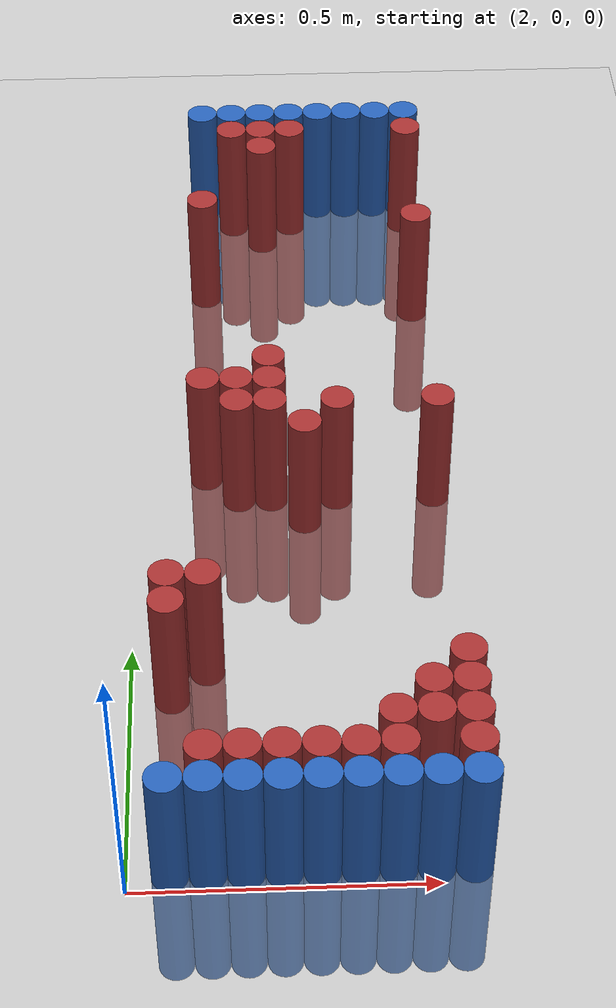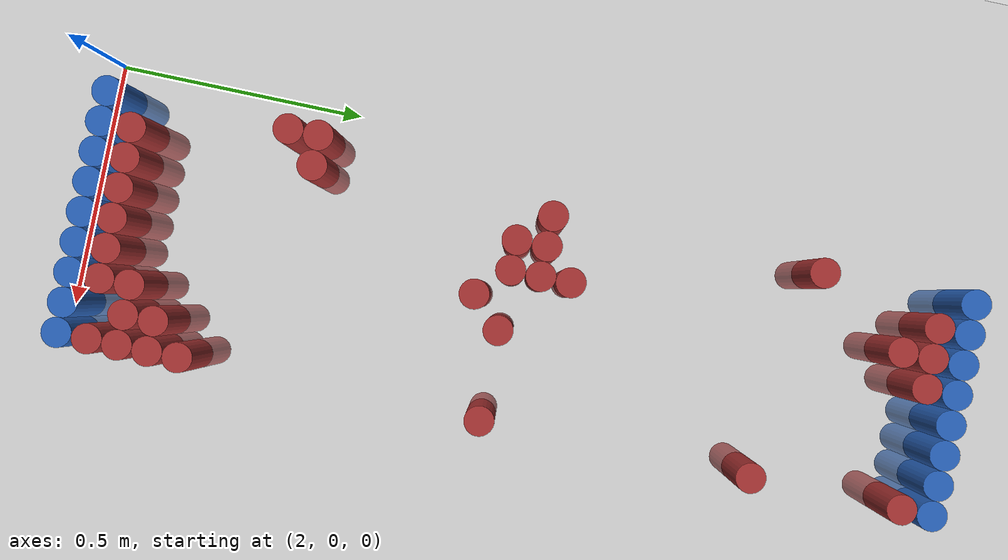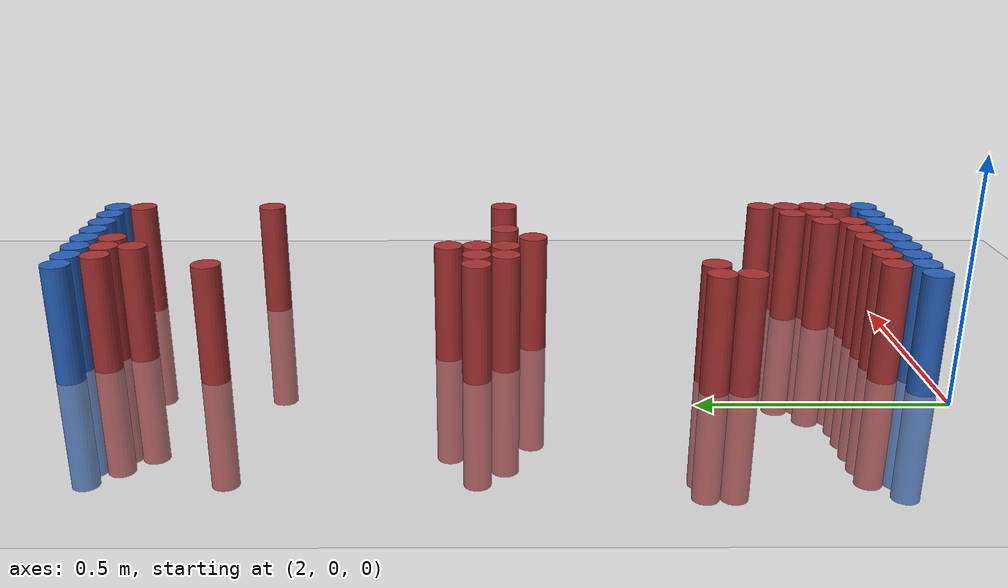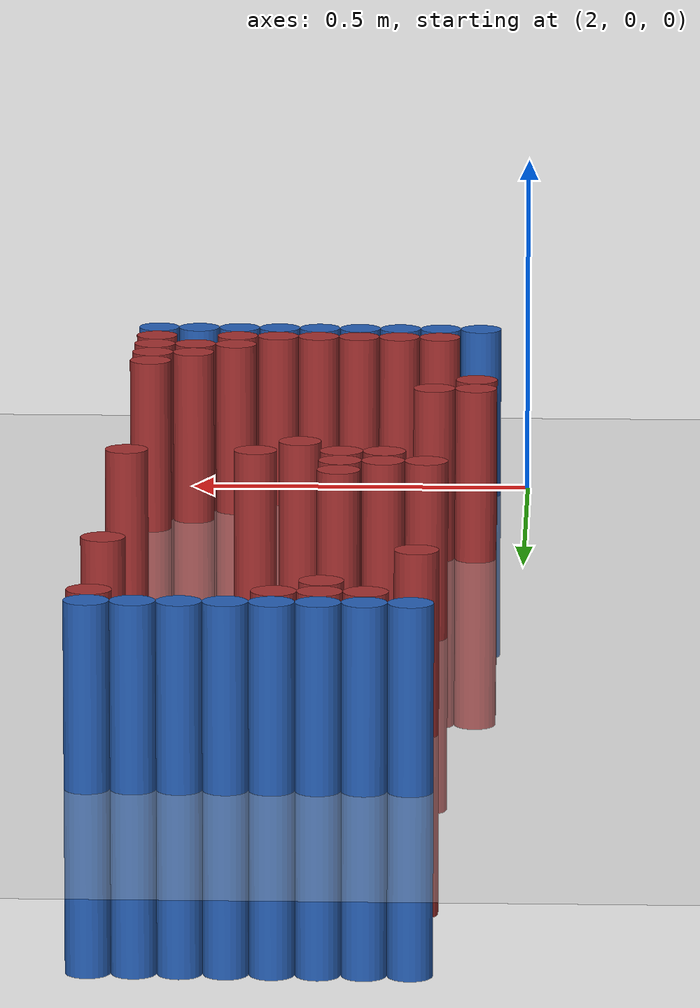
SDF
<sdf version="1.6">
 <world name="default">
  <model name="ground_plane">
   <static>1</static>
   <link name="link">
    <collision name="collision">
     <geometry><plane><normal>0 0 1</normal><size>100 100</size></plane></geometry>
     <surface><friction><ode><mu>100</mu><mu2>50</mu2></ode></friction></surface>
    </collision>
    <visual name="visual">
     <cast_shadows>0</cast_shadows>
     <geometry><plane><normal>0 0 1</normal><size>100 100</size></plane></geometry>
     <material>
      <script><uri>file://media/materials/scripts/gazebo.material</uri><name>Gazebo/Grey</name></script>
     </material>
    </visual>
   </link>
  </model>
  <model name="unit_cylinder_96">
   <static>1</static>
   <pose>2.130000 1.770000 0.000000 0.000000 0.000000 0.000000</pose>
   <link name="link">
    <inertial>
     <mass>1</mass>
     <inertia><ixx>0.145833</ixx><ixy>0</ixy><ixz>0</ixz><iyy>0.145833</iyy><iyz>0</iyz><izz>0.125</izz></inertia>
    </inertial>
    <collision name="collision">
     <geometry><cylinder><radius>0.030000</radius><length>0.5</length></cylinder></geometry>
    </collision>
    <visual name="visual">
     <geometry><cylinder><radius>0.030000</radius><length>0.5</length></cylinder></geometry>
     <material>
      <ambient>0.152000 0.379000 0.720000 1</ambient>
      <diffuse>0.152000 0.379000 0.720000 1</diffuse>
     </material>
     <material>
      <script><name>Gazebo/Grey</name><uri>file://media/materials/scripts/gazebo.material</uri></script>
     </material>
    </visual>
   </link>
  </model>
  <model name="unit_cylinder_97">
   <static>1</static>
   <pose>2.190000 1.770000 0.000000 0.000000 0.000000 0.000000</pose>
   <link name="link">
    <inertial>
     <mass>1</mass>
     <inertia><ixx>0.145833</ixx><ixy>0</ixy><ixz>0</ixz><iyy>0.145833</iyy><iyz>0</iyz><izz>0.125</izz></inertia>
    </inertial>
    <collision name="collision">
     <geometry><cylinder><radius>0.030000</radius><length>0.5</length></cylinder></geometry>
    </collision>
    <visual name="visual">
     <geometry><cylinder><radius>0.030000</radius><length>0.5</length></cylinder></geometry>
     <material>
      <ambient>0.152000 0.379000 0.720000 1</ambient>
      <diffuse>0.152000 0.379000 0.720000 1</diffuse>
     </material>
     <material>
      <script><name>Gazebo/Grey</name><uri>file://media/materials/scripts/gazebo.material</uri></script>
     </material>
    </visual>
   </link>
  </model>
  <model name="unit_cylinder_98">
   <static>1</static>
   <pose>2.250000 1.770000 0.000000 0.000000 0.000000 0.000000</pose>
   <link name="link">
    <inertial>
     <mass>1</mass>
     <inertia><ixx>0.145833</ixx><ixy>0</ixy><ixz>0</ixz><iyy>0.145833</iyy><iyz>0</iyz><izz>0.125</izz></inertia>
    </inertial>
    <collision name="collision">
     <geometry><cylinder><radius>0.030000</radius><length>0.5</length></cylinder></geometry>
    </collision>
    <visual name="visual">
     <geometry><cylinder><radius>0.030000</radius><length>0.5</length></cylinder></geometry>
     <material>
      <ambient>0.152000 0.379000 0.720000 1</ambient>
      <diffuse>0.152000 0.379000 0.720000 1</diffuse>
     </material>
     <material>
      <script><name>Gazebo/Grey</name><uri>file://media/materials/scripts/gazebo.material</uri></script>
     </material>
    </visual>
   </link>
  </model>
  <model name="unit_cylinder_99">
   <static>1</static>
   <pose>2.310000 1.770000 0.000000 0.000000 0.000000 0.000000</pose>
   <link name="link">
    <inertial>
     <mass>1</mass>
     <inertia><ixx>0.145833</ixx><ixy>0</ixy><ixz>0</ixz><iyy>0.145833</iyy><iyz>0</iyz><izz>0.125</izz></inertia>
    </inertial>
    <collision name="collision">
     <geometry><cylinder><radius>0.030000</radius><length>0.5</length></cylinder></geometry>
    </collision>
    <visual name="visual">
     <geometry><cylinder><radius>0.030000</radius><length>0.5</length></cylinder></geometry>
     <material>
      <ambient>0.152000 0.379000 0.720000 1</ambient>
      <diffuse>0.152000 0.379000 0.720000 1</diffuse>
     </material>
     <material>
      <script><name>Gazebo/Grey</name><uri>file://media/materials/scripts/gazebo.material</uri></script>
     </material>
    </visual>
   </link>
  </model>
  <model name="unit_cylinder_100">
   <static>1</static>
   <pose>2.370000 1.770000 0.000000 0.000000 0.000000 0.000000</pose>
   <link name="link">
    <inertial>
     <mass>1</mass>
     <inertia><ixx>0.145833</ixx><ixy>0</ixy><ixz>0</ixz><iyy>0.145833</iyy><iyz>0</iyz><izz>0.125</izz></inertia>
    </inertial>
    <collision name="collision">
     <geometry><cylinder><radius>0.030000</radius><length>0.5</length></cylinder></geometry>
    </collision>
    <visual name="visual">
     <geometry><cylinder><radius>0.030000</radius><length>0.5</length></cylinder></geometry>
     <material>
      <ambient>0.152000 0.379000 0.720000 1</ambient>
      <diffuse>0.152000 0.379000 0.720000 1</diffuse>
     </material>
     <material>
      <script><name>Gazebo/Grey</name><uri>file://media/materials/scripts/gazebo.material</uri></script>
     </material>
    </visual>
   </link>
  </model>
  <model name="unit_cylinder_101">
   <static>1</static>
   <pose>2.430000 1.770000 0.000000 0.000000 0.000000 0.000000</pose>
   <link name="link">
    <inertial>
     <mass>1</mass>
     <inertia><ixx>0.145833</ixx><ixy>0</ixy><ixz>0</ixz><iyy>0.145833</iyy><iyz>0</iyz><izz>0.125</izz></inertia>
    </inertial>
    <collision name="collision">
     <geometry><cylinder><radius>0.030000</radius><length>0.5</length></cylinder></geometry>
    </collision>
    <visual name="visual">
     <geometry><cylinder><radius>0.030000</radius><length>0.5</length></cylinder></geometry>
     <material>
      <ambient>0.152000 0.379000 0.720000 1</ambient>
      <diffuse>0.152000 0.379000 0.720000 1</diffuse>
     </material>
     <material>
      <script><name>Gazebo/Grey</name><uri>file://media/materials/scripts/gazebo.material</uri></script>
     </material>
    </visual>
   </link>
  </model>
  <model name="unit_cylinder_102">
   <static>1</static>
   <pose>2.490000 1.770000 0.000000 0.000000 0.000000 0.000000</pose>
   <link name="link">
    <inertial>
     <mass>1</mass>
     <inertia><ixx>0.145833</ixx><ixy>0</ixy><ixz>0</ixz><iyy>0.145833</iyy><iyz>0</iyz><izz>0.125</izz></inertia>
    </inertial>
    <collision name="collision">
     <geometry><cylinder><radius>0.030000</radius><length>0.5</length></cylinder></geometry>
    </collision>
    <visual name="visual">
     <geometry><cylinder><radius>0.030000</radius><length>0.5</length></cylinder></geometry>
     <material>
      <ambient>0.152000 0.379000 0.720000 1</ambient>
      <diffuse>0.152000 0.379000 0.720000 1</diffuse>
     </material>
     <material>
      <script><name>Gazebo/Grey</name><uri>file://media/materials/scripts/gazebo.material</uri></script>
     </material>
    </visual>
   </link>
  </model>
  <model name="unit_cylinder_103">
   <static>1</static>
   <pose>2.550000 1.770000 0.000000 0.000000 0.000000 0.000000</pose>
   <link name="link">
    <inertial>
     <mass>1</mass>
     <inertia><ixx>0.145833</ixx><ixy>0</ixy><ixz>0</ixz><iyy>0.145833</iyy><iyz>0</iyz><izz>0.125</izz></inertia>
    </inertial>
    <collision name="collision">
     <geometry><cylinder><radius>0.030000</radius><length>0.5</length></cylinder></geometry>
    </collision>
    <visual name="visual">
     <geometry><cylinder><radius>0.030000</radius><length>0.5</length></cylinder></geometry>
     <material>
      <ambient>0.152000 0.379000 0.720000 1</ambient>
      <diffuse>0.152000 0.379000 0.720000 1</diffuse>
     </material>
     <material>
      <script><name>Gazebo/Grey</name><uri>file://media/materials/scripts/gazebo.material</uri></script>
     </material>
    </visual>
   </link>
  </model>
  <model name="unit_cylinder_125">
   <static>1</static>
   <pose>2.190000 1.710000 0.000000 0.000000 0.000000 0.000000</pose>
   <link name="link">
    <inertial>
     <mass>1</mass>
     <inertia><ixx>0.145833</ixx><ixy>0</ixy><ixz>0</ixz><iyy>0.145833</iyy><iyz>0</iyz><izz>0.125</izz></inertia>
    </inertial>
    <collision name="collision">
     <geometry><cylinder><radius>0.030000</radius><length>0.5</length></cylinder></geometry>
    </collision>
    <visual name="visual">
     <geometry><cylinder><radius>0.030000</radius><length>0.5</length></cylinder></geometry>
     <material>
      <ambient>0.648000 0.192000 0.192000 1</ambient>
      <diffuse>0.648000 0.192000 0.192000 1</diffuse>
     </material>
     <material>
      <script><name>Gazebo/Grey</name><uri>file://media/materials/scripts/gazebo.material</uri></script>
     </material>
    </visual>
   </link>
  </model>
  <model name="unit_cylinder_126">
   <static>1</static>
   <pose>2.250000 1.710000 0.000000 0.000000 0.000000 0.000000</pose>
   <link name="link">
    <inertial>
     <mass>1</mass>
     <inertia><ixx>0.145833</ixx><ixy>0</ixy><ixz>0</ixz><iyy>0.145833</iyy><iyz>0</iyz><izz>0.125</izz></inertia>
    </inertial>
    <collision name="collision">
     <geometry><cylinder><radius>0.030000</radius><length>0.5</length></cylinder></geometry>
    </collision>
    <visual name="visual">
     <geometry><cylinder><radius>0.030000</radius><length>0.5</length></cylinder></geometry>
     <material>
      <ambient>0.648000 0.192000 0.192000 1</ambient>
      <diffuse>0.648000 0.192000 0.192000 1</diffuse>
     </material>
     <material>
      <script><name>Gazebo/Grey</name><uri>file://media/materials/scripts/gazebo.material</uri></script>
     </material>
    </visual>
   </link>
  </model>
  <model name="unit_cylinder_127">
   <static>1</static>
   <pose>2.310000 1.710000 0.000000 0.000000 0.000000 0.000000</pose>
   <link name="link">
    <inertial>
     <mass>1</mass>
     <inertia><ixx>0.145833</ixx><ixy>0</ixy><ixz>0</ixz><iyy>0.145833</iyy><iyz>0</iyz><izz>0.125</izz></inertia>
    </inertial>
    <collision name="collision">
     <geometry><cylinder><radius>0.030000</radius><length>0.5</length></cylinder></geometry>
    </collision>
    <visual name="visual">
     <geometry><cylinder><radius>0.030000</radius><length>0.5</length></cylinder></geometry>
     <material>
      <ambient>0.648000 0.192000 0.192000 1</ambient>
      <diffuse>0.648000 0.192000 0.192000 1</diffuse>
     </material>
     <material>
      <script><name>Gazebo/Grey</name><uri>file://media/materials/scripts/gazebo.material</uri></script>
     </material>
    </visual>
   </link>
  </model>
  <model name="unit_cylinder_128">
   <static>1</static>
   <pose>2.550000 1.710000 0.000000 0.000000 0.000000 0.000000</pose>
   <link name="link">
    <inertial>
     <mass>1</mass>
     <inertia><ixx>0.145833</ixx><ixy>0</ixy><ixz>0</ixz><iyy>0.145833</iyy><iyz>0</iyz><izz>0.125</izz></inertia>
    </inertial>
    <collision name="collision">
     <geometry><cylinder><radius>0.030000</radius><length>0.5</length></cylinder></geometry>
    </collision>
    <visual name="visual">
     <geometry><cylinder><radius>0.030000</radius><length>0.5</length></cylinder></geometry>
     <material>
      <ambient>0.648000 0.192000 0.192000 1</ambient>
      <diffuse>0.648000 0.192000 0.192000 1</diffuse>
     </material>
     <material>
      <script><name>Gazebo/Grey</name><uri>file://media/materials/scripts/gazebo.material</uri></script>
     </material>
    </visual>
   </link>
  </model>
  <model name="unit_cylinder_137">
   <static>1</static>
   <pose>2.250000 1.650000 0.000000 0.000000 0.000000 0.000000</pose>
   <link name="link">
    <inertial>
     <mass>1</mass>
     <inertia><ixx>0.145833</ixx><ixy>0</ixy><ixz>0</ixz><iyy>0.145833</iyy><iyz>0</iyz><izz>0.125</izz></inertia>
    </inertial>
    <collision name="collision">
     <geometry><cylinder><radius>0.030000</radius><length>0.5</length></cylinder></geometry>
    </collision>
    <visual name="visual">
     <geometry><cylinder><radius>0.030000</radius><length>0.5</length></cylinder></geometry>
     <material>
      <ambient>0.648000 0.192000 0.192000 1</ambient>
      <diffuse>0.648000 0.192000 0.192000 1</diffuse>
     </material>
     <material>
      <script><name>Gazebo/Grey</name><uri>file://media/materials/scripts/gazebo.material</uri></script>
     </material>
    </visual>
   </link>
  </model>
  <model name="unit_cylinder_141">
   <static>1</static>
   <pose>2.130000 1.470000 0.000000 0.000000 0.000000 0.000000</pose>
   <link name="link">
    <inertial>
     <mass>1</mass>
     <inertia><ixx>0.145833</ixx><ixy>0</ixy><ixz>0</ixz><iyy>0.145833</iyy><iyz>0</iyz><izz>0.125</izz></inertia>
    </inertial>
    <collision name="collision">
     <geometry><cylinder><radius>0.030000</radius><length>0.5</length></cylinder></geometry>
    </collision>
    <visual name="visual">
     <geometry><cylinder><radius>0.030000</radius><length>0.5</length></cylinder></geometry>
     <material>
      <ambient>0.648000 0.192000 0.192000 1</ambient>
      <diffuse>0.648000 0.192000 0.192000 1</diffuse>
     </material>
     <material>
      <script><name>Gazebo/Grey</name><uri>file://media/materials/scripts/gazebo.material</uri></script>
     </material>
    </visual>
   </link>
  </model>
  <model name="unit_cylinder_144">
   <static>1</static>
   <pose>2.550000 1.410000 0.000000 0.000000 0.000000 0.000000</pose>
   <link name="link">
    <inertial>
     <mass>1</mass>
     <inertia><ixx>0.145833</ixx><ixy>0</ixy><ixz>0</ixz><iyy>0.145833</iyy><iyz>0</iyz><izz>0.125</izz></inertia>
    </inertial>
    <collision name="collision">
     <geometry><cylinder><radius>0.030000</radius><length>0.5</length></cylinder></geometry>
    </collision>
    <visual name="visual">
     <geometry><cylinder><radius>0.030000</radius><length>0.5</length></cylinder></geometry>
     <material>
      <ambient>0.648000 0.192000 0.192000 1</ambient>
      <diffuse>0.648000 0.192000 0.192000 1</diffuse>
     </material>
     <material>
      <script><name>Gazebo/Grey</name><uri>file://media/materials/scripts/gazebo.material</uri></script>
     </material>
    </visual>
   </link>
  </model>
  <model name="unit_cylinder_156">
   <static>1</static>
   <pose>2.250000 0.990000 0.000000 0.000000 0.000000 0.000000</pose>
   <link name="link">
    <inertial>
     <mass>1</mass>
     <inertia><ixx>0.145833</ixx><ixy>0</ixy><ixz>0</ixz><iyy>0.145833</iyy><iyz>0</iyz><izz>0.125</izz></inertia>
    </inertial>
    <collision name="collision">
     <geometry><cylinder><radius>0.030000</radius><length>0.5</length></cylinder></geometry>
    </collision>
    <visual name="visual">
     <geometry><cylinder><radius>0.030000</radius><length>0.5</length></cylinder></geometry>
     <material>
      <ambient>0.648000 0.192000 0.192000 1</ambient>
      <diffuse>0.648000 0.192000 0.192000 1</diffuse>
     </material>
     <material>
      <script><name>Gazebo/Grey</name><uri>file://media/materials/scripts/gazebo.material</uri></script>
     </material>
    </visual>
   </link>
  </model>
  <model name="unit_cylinder_160">
   <static>1</static>
   <pose>2.130000 0.930000 0.000000 0.000000 0.000000 0.000000</pose>
   <link name="link">
    <inertial>
     <mass>1</mass>
     <inertia><ixx>0.145833</ixx><ixy>0</ixy><ixz>0</ixz><iyy>0.145833</iyy><iyz>0</iyz><izz>0.125</izz></inertia>
    </inertial>
    <collision name="collision">
     <geometry><cylinder><radius>0.030000</radius><length>0.5</length></cylinder></geometry>
    </collision>
    <visual name="visual">
     <geometry><cylinder><radius>0.030000</radius><length>0.5</length></cylinder></geometry>
     <material>
      <ambient>0.648000 0.192000 0.192000 1</ambient>
      <diffuse>0.648000 0.192000 0.192000 1</diffuse>
     </material>
     <material>
      <script><name>Gazebo/Grey</name><uri>file://media/materials/scripts/gazebo.material</uri></script>
     </material>
    </visual>
   </link>
  </model>
  <model name="unit_cylinder_161">
   <static>1</static>
   <pose>2.190000 0.930000 0.000000 0.000000 0.000000 0.000000</pose>
   <link name="link">
    <inertial>
     <mass>1</mass>
     <inertia><ixx>0.145833</ixx><ixy>0</ixy><ixz>0</ixz><iyy>0.145833</iyy><iyz>0</iyz><izz>0.125</izz></inertia>
    </inertial>
    <collision name="collision">
     <geometry><cylinder><radius>0.030000</radius><length>0.5</length></cylinder></geometry>
    </collision>
    <visual name="visual">
     <geometry><cylinder><radius>0.030000</radius><length>0.5</length></cylinder></geometry>
     <material>
      <ambient>0.648000 0.192000 0.192000 1</ambient>
      <diffuse>0.648000 0.192000 0.192000 1</diffuse>
     </material>
     <material>
      <script><name>Gazebo/Grey</name><uri>file://media/materials/scripts/gazebo.material</uri></script>
     </material>
    </visual>
   </link>
  </model>
  <model name="unit_cylinder_162">
   <static>1</static>
   <pose>2.250000 0.930000 0.000000 0.000000 0.000000 0.000000</pose>
   <link name="link">
    <inertial>
     <mass>1</mass>
     <inertia><ixx>0.145833</ixx><ixy>0</ixy><ixz>0</ixz><iyy>0.145833</iyy><iyz>0</iyz><izz>0.125</izz></inertia>
    </inertial>
    <collision name="collision">
     <geometry><cylinder><radius>0.030000</radius><length>0.5</length></cylinder></geometry>
    </collision>
    <visual name="visual">
     <geometry><cylinder><radius>0.030000</radius><length>0.5</length></cylinder></geometry>
     <material>
      <ambient>0.648000 0.192000 0.192000 1</ambient>
      <diffuse>0.648000 0.192000 0.192000 1</diffuse>
     </material>
     <material>
      <script><name>Gazebo/Grey</name><uri>file://media/materials/scripts/gazebo.material</uri></script>
     </material>
    </visual>
   </link>
  </model>
  <model name="unit_cylinder_165">
   <static>1</static>
   <pose>2.190000 0.870000 0.000000 0.000000 0.000000 0.000000</pose>
   <link name="link">
    <inertial>
     <mass>1</mass>
     <inertia><ixx>0.145833</ixx><ixy>0</ixy><ixz>0</ixz><iyy>0.145833</iyy><iyz>0</iyz><izz>0.125</izz></inertia>
    </inertial>
    <collision name="collision">
     <geometry><cylinder><radius>0.030000</radius><length>0.5</length></cylinder></geometry>
    </collision>
    <visual name="visual">
     <geometry><cylinder><radius>0.030000</radius><length>0.5</length></cylinder></geometry>
     <material>
      <ambient>0.648000 0.192000 0.192000 1</ambient>
      <diffuse>0.648000 0.192000 0.192000 1</diffuse>
     </material>
     <material>
      <script><name>Gazebo/Grey</name><uri>file://media/materials/scripts/gazebo.material</uri></script>
     </material>
    </visual>
   </link>
  </model>
  <model name="unit_cylinder_166">
   <static>1</static>
   <pose>2.250000 0.870000 0.000000 0.000000 0.000000 0.000000</pose>
   <link name="link">
    <inertial>
     <mass>1</mass>
     <inertia><ixx>0.145833</ixx><ixy>0</ixy><ixz>0</ixz><iyy>0.145833</iyy><iyz>0</iyz><izz>0.125</izz></inertia>
    </inertial>
    <collision name="collision">
     <geometry><cylinder><radius>0.030000</radius><length>0.5</length></cylinder></geometry>
    </collision>
    <visual name="visual">
     <geometry><cylinder><radius>0.030000</radius><length>0.5</length></cylinder></geometry>
     <material>
      <ambient>0.648000 0.192000 0.192000 1</ambient>
      <diffuse>0.648000 0.192000 0.192000 1</diffuse>
     </material>
     <material>
      <script><name>Gazebo/Grey</name><uri>file://media/materials/scripts/gazebo.material</uri></script>
     </material>
    </visual>
   </link>
  </model>
  <model name="unit_cylinder_167">
   <static>1</static>
   <pose>2.370000 0.870000 0.000000 0.000000 0.000000 0.000000</pose>
   <link name="link">
    <inertial>
     <mass>1</mass>
     <inertia><ixx>0.145833</ixx><ixy>0</ixy><ixz>0</ixz><iyy>0.145833</iyy><iyz>0</iyz><izz>0.125</izz></inertia>
    </inertial>
    <collision name="collision">
     <geometry><cylinder><radius>0.030000</radius><length>0.5</length></cylinder></geometry>
    </collision>
    <visual name="visual">
     <geometry><cylinder><radius>0.030000</radius><length>0.5</length></cylinder></geometry>
     <material>
      <ambient>0.648000 0.192000 0.192000 1</ambient>
      <diffuse>0.648000 0.192000 0.192000 1</diffuse>
     </material>
     <material>
      <script><name>Gazebo/Grey</name><uri>file://media/materials/scripts/gazebo.material</uri></script>
     </material>
    </visual>
   </link>
  </model>
  <model name="unit_cylinder_168">
   <static>1</static>
   <pose>2.550000 0.870000 0.000000 0.000000 0.000000 0.000000</pose>
   <link name="link">
    <inertial>
     <mass>1</mass>
     <inertia><ixx>0.145833</ixx><ixy>0</ixy><ixz>0</ixz><iyy>0.145833</iyy><iyz>0</iyz><izz>0.125</izz></inertia>
    </inertial>
    <collision name="collision">
     <geometry><cylinder><radius>0.030000</radius><length>0.5</length></cylinder></geometry>
    </collision>
    <visual name="visual">
     <geometry><cylinder><radius>0.030000</radius><length>0.5</length></cylinder></geometry>
     <material>
      <ambient>0.648000 0.192000 0.192000 1</ambient>
      <diffuse>0.648000 0.192000 0.192000 1</diffuse>
     </material>
     <material>
      <script><name>Gazebo/Grey</name><uri>file://media/materials/scripts/gazebo.material</uri></script>
     </material>
    </visual>
   </link>
  </model>
  <model name="unit_cylinder_169">
   <static>1</static>
   <pose>2.310000 0.810000 0.000000 0.000000 0.000000 0.000000</pose>
   <link name="link">
    <inertial>
     <mass>1</mass>
     <inertia><ixx>0.145833</ixx><ixy>0</ixy><ixz>0</ixz><iyy>0.145833</iyy><iyz>0</iyz><izz>0.125</izz></inertia>
    </inertial>
    <collision name="collision">
     <geometry><cylinder><radius>0.030000</radius><length>0.5</length></cylinder></geometry>
    </collision>
    <visual name="visual">
     <geometry><cylinder><radius>0.030000</radius><length>0.5</length></cylinder></geometry>
     <material>
      <ambient>0.648000 0.192000 0.192000 1</ambient>
      <diffuse>0.648000 0.192000 0.192000 1</diffuse>
     </material>
     <material>
      <script><name>Gazebo/Grey</name><uri>file://media/materials/scripts/gazebo.material</uri></script>
     </material>
    </visual>
   </link>
  </model>
  <model name="unit_cylinder_189">
   <static>1</static>
   <pose>2.070000 0.450000 0.000000 0.000000 0.000000 0.000000</pose>
   <link name="link">
    <inertial>
     <mass>1</mass>
     <inertia><ixx>0.145833</ixx><ixy>0</ixy><ixz>0</ixz><iyy>0.145833</iyy><iyz>0</iyz><izz>0.125</izz></inertia>
    </inertial>
    <collision name="collision">
     <geometry><cylinder><radius>0.030000</radius><length>0.5</length></cylinder></geometry>
    </collision>
    <visual name="visual">
     <geometry><cylinder><radius>0.030000</radius><length>0.5</length></cylinder></geometry>
     <material>
      <ambient>0.648000 0.192000 0.192000 1</ambient>
      <diffuse>0.648000 0.192000 0.192000 1</diffuse>
     </material>
     <material>
      <script><name>Gazebo/Grey</name><uri>file://media/materials/scripts/gazebo.material</uri></script>
     </material>
    </visual>
   </link>
  </model>
  <model name="unit_cylinder_190">
   <static>1</static>
   <pose>2.130000 0.450000 0.000000 0.000000 0.000000 0.000000</pose>
   <link name="link">
    <inertial>
     <mass>1</mass>
     <inertia><ixx>0.145833</ixx><ixy>0</ixy><ixz>0</ixz><iyy>0.145833</iyy><iyz>0</iyz><izz>0.125</izz></inertia>
    </inertial>
    <collision name="collision">
     <geometry><cylinder><radius>0.030000</radius><length>0.5</length></cylinder></geometry>
    </collision>
    <visual name="visual">
     <geometry><cylinder><radius>0.030000</radius><length>0.5</length></cylinder></geometry>
     <material>
      <ambient>0.648000 0.192000 0.192000 1</ambient>
      <diffuse>0.648000 0.192000 0.192000 1</diffuse>
     </material>
     <material>
      <script><name>Gazebo/Grey</name><uri>file://media/materials/scripts/gazebo.material</uri></script>
     </material>
    </visual>
   </link>
  </model>
  <model name="unit_cylinder_191">
   <static>1</static>
   <pose>2.070000 0.390000 0.000000 0.000000 0.000000 0.000000</pose>
   <link name="link">
    <inertial>
     <mass>1</mass>
     <inertia><ixx>0.145833</ixx><ixy>0</ixy><ixz>0</ixz><iyy>0.145833</iyy><iyz>0</iyz><izz>0.125</izz></inertia>
    </inertial>
    <collision name="collision">
     <geometry><cylinder><radius>0.030000</radius><length>0.5</length></cylinder></geometry>
    </collision>
    <visual name="visual">
     <geometry><cylinder><radius>0.030000</radius><length>0.5</length></cylinder></geometry>
     <material>
      <ambient>0.648000 0.192000 0.192000 1</ambient>
      <diffuse>0.648000 0.192000 0.192000 1</diffuse>
     </material>
     <material>
      <script><name>Gazebo/Grey</name><uri>file://media/materials/scripts/gazebo.material</uri></script>
     </material>
    </visual>
   </link>
  </model>
  <model name="unit_cylinder_192">
   <static>1</static>
   <pose>2.550000 0.270000 0.000000 0.000000 0.000000 0.000000</pose>
   <link name="link">
    <inertial>
     <mass>1</mass>
     <inertia><ixx>0.145833</ixx><ixy>0</ixy><ixz>0</ixz><iyy>0.145833</iyy><iyz>0</iyz><izz>0.125</izz></inertia>
    </inertial>
    <collision name="collision">
     <geometry><cylinder><radius>0.030000</radius><length>0.5</length></cylinder></geometry>
    </collision>
    <visual name="visual">
     <geometry><cylinder><radius>0.030000</radius><length>0.5</length></cylinder></geometry>
     <material>
      <ambient>0.648000 0.192000 0.192000 1</ambient>
      <diffuse>0.648000 0.192000 0.192000 1</diffuse>
     </material>
     <material>
      <script><name>Gazebo/Grey</name><uri>file://media/materials/scripts/gazebo.material</uri></script>
     </material>
    </visual>
   </link>
  </model>
  <model name="unit_cylinder_194">
   <static>1</static>
   <pose>2.490000 0.210000 0.000000 0.000000 0.000000 0.000000</pose>
   <link name="link">
    <inertial>
     <mass>1</mass>
     <inertia><ixx>0.145833</ixx><ixy>0</ixy><ixz>0</ixz><iyy>0.145833</iyy><iyz>0</iyz><izz>0.125</izz></inertia>
    </inertial>
    <collision name="collision">
     <geometry><cylinder><radius>0.030000</radius><length>0.5</length></cylinder></geometry>
    </collision>
    <visual name="visual">
     <geometry><cylinder><radius>0.030000</radius><length>0.5</length></cylinder></geometry>
     <material>
      <ambient>0.648000 0.192000 0.192000 1</ambient>
      <diffuse>0.648000 0.192000 0.192000 1</diffuse>
     </material>
     <material>
      <script><name>Gazebo/Grey</name><uri>file://media/materials/scripts/gazebo.material</uri></script>
     </material>
    </visual>
   </link>
  </model>
  <model name="unit_cylinder_195">
   <static>1</static>
   <pose>2.550000 0.210000 0.000000 0.000000 0.000000 0.000000</pose>
   <link name="link">
    <inertial>
     <mass>1</mass>
     <inertia><ixx>0.145833</ixx><ixy>0</ixy><ixz>0</ixz><iyy>0.145833</iyy><iyz>0</iyz><izz>0.125</izz></inertia>
    </inertial>
    <collision name="collision">
     <geometry><cylinder><radius>0.030000</radius><length>0.5</length></cylinder></geometry>
    </collision>
    <visual name="visual">
     <geometry><cylinder><radius>0.030000</radius><length>0.5</length></cylinder></geometry>
     <material>
      <ambient>0.648000 0.192000 0.192000 1</ambient>
      <diffuse>0.648000 0.192000 0.192000 1</diffuse>
     </material>
     <material>
      <script><name>Gazebo/Grey</name><uri>file://media/materials/scripts/gazebo.material</uri></script>
     </material>
    </visual>
   </link>
  </model>
  <model name="unit_cylinder_196">
   <static>1</static>
   <pose>2.430000 0.150000 0.000000 0.000000 0.000000 0.000000</pose>
   <link name="link">
    <inertial>
     <mass>1</mass>
     <inertia><ixx>0.145833</ixx><ixy>0</ixy><ixz>0</ixz><iyy>0.145833</iyy><iyz>0</iyz><izz>0.125</izz></inertia>
    </inertial>
    <collision name="collision">
     <geometry><cylinder><radius>0.030000</radius><length>0.5</length></cylinder></geometry>
    </collision>
    <visual name="visual">
     <geometry><cylinder><radius>0.030000</radius><length>0.5</length></cylinder></geometry>
     <material>
      <ambient>0.648000 0.192000 0.192000 1</ambient>
      <diffuse>0.648000 0.192000 0.192000 1</diffuse>
     </material>
     <material>
      <script><name>Gazebo/Grey</name><uri>file://media/materials/scripts/gazebo.material</uri></script>
     </material>
    </visual>
   </link>
  </model>
  <model name="unit_cylinder_197">
   <static>1</static>
   <pose>2.490000 0.150000 0.000000 0.000000 0.000000 0.000000</pose>
   <link name="link">
    <inertial>
     <mass>1</mass>
     <inertia><ixx>0.145833</ixx><ixy>0</ixy><ixz>0</ixz><iyy>0.145833</iyy><iyz>0</iyz><izz>0.125</izz></inertia>
    </inertial>
    <collision name="collision">
     <geometry><cylinder><radius>0.030000</radius><length>0.5</length></cylinder></geometry>
    </collision>
    <visual name="visual">
     <geometry><cylinder><radius>0.030000</radius><length>0.5</length></cylinder></geometry>
     <material>
      <ambient>0.648000 0.192000 0.192000 1</ambient>
      <diffuse>0.648000 0.192000 0.192000 1</diffuse>
     </material>
     <material>
      <script><name>Gazebo/Grey</name><uri>file://media/materials/scripts/gazebo.material</uri></script>
     </material>
    </visual>
   </link>
  </model>
  <model name="unit_cylinder_198">
   <static>1</static>
   <pose>2.550000 0.150000 0.000000 0.000000 0.000000 0.000000</pose>
   <link name="link">
    <inertial>
     <mass>1</mass>
     <inertia><ixx>0.145833</ixx><ixy>0</ixy><ixz>0</ixz><iyy>0.145833</iyy><iyz>0</iyz><izz>0.125</izz></inertia>
    </inertial>
    <collision name="collision">
     <geometry><cylinder><radius>0.030000</radius><length>0.5</length></cylinder></geometry>
    </collision>
    <visual name="visual">
     <geometry><cylinder><radius>0.030000</radius><length>0.5</length></cylinder></geometry>
     <material>
      <ambient>0.648000 0.192000 0.192000 1</ambient>
      <diffuse>0.648000 0.192000 0.192000 1</diffuse>
     </material>
     <material>
      <script><name>Gazebo/Grey</name><uri>file://media/materials/scripts/gazebo.material</uri></script>
     </material>
    </visual>
   </link>
  </model>
  <model name="unit_cylinder_202">
   <static>1</static>
   <pose>2.130000 0.090000 0.000000 0.000000 0.000000 0.000000</pose>
   <link name="link">
    <inertial>
     <mass>1</mass>
     <inertia><ixx>0.145833</ixx><ixy>0</ixy><ixz>0</ixz><iyy>0.145833</iyy><iyz>0</iyz><izz>0.125</izz></inertia>
    </inertial>
    <collision name="collision">
     <geometry><cylinder><radius>0.030000</radius><length>0.5</length></cylinder></geometry>
    </collision>
    <visual name="visual">
     <geometry><cylinder><radius>0.030000</radius><length>0.5</length></cylinder></geometry>
     <material>
      <ambient>0.648000 0.192000 0.192000 1</ambient>
      <diffuse>0.648000 0.192000 0.192000 1</diffuse>
     </material>
     <material>
      <script><name>Gazebo/Grey</name><uri>file://media/materials/scripts/gazebo.material</uri></script>
     </material>
    </visual>
   </link>
  </model>
  <model name="unit_cylinder_203">
   <static>1</static>
   <pose>2.190000 0.090000 0.000000 0.000000 0.000000 0.000000</pose>
   <link name="link">
    <inertial>
     <mass>1</mass>
     <inertia><ixx>0.145833</ixx><ixy>0</ixy><ixz>0</ixz><iyy>0.145833</iyy><iyz>0</iyz><izz>0.125</izz></inertia>
    </inertial>
    <collision name="collision">
     <geometry><cylinder><radius>0.030000</radius><length>0.5</length></cylinder></geometry>
    </collision>
    <visual name="visual">
     <geometry><cylinder><radius>0.030000</radius><length>0.5</length></cylinder></geometry>
     <material>
      <ambient>0.648000 0.192000 0.192000 1</ambient>
      <diffuse>0.648000 0.192000 0.192000 1</diffuse>
     </material>
     <material>
      <script><name>Gazebo/Grey</name><uri>file://media/materials/scripts/gazebo.material</uri></script>
     </material>
    </visual>
   </link>
  </model>
  <model name="unit_cylinder_204">
   <static>1</static>
   <pose>2.250000 0.090000 0.000000 0.000000 0.000000 0.000000</pose>
   <link name="link">
    <inertial>
     <mass>1</mass>
     <inertia><ixx>0.145833</ixx><ixy>0</ixy><ixz>0</ixz><iyy>0.145833</iyy><iyz>0</iyz><izz>0.125</izz></inertia>
    </inertial>
    <collision name="collision">
     <geometry><cylinder><radius>0.030000</radius><length>0.5</length></cylinder></geometry>
    </collision>
    <visual name="visual">
     <geometry><cylinder><radius>0.030000</radius><length>0.5</length></cylinder></geometry>
     <material>
      <ambient>0.648000 0.192000 0.192000 1</ambient>
      <diffuse>0.648000 0.192000 0.192000 1</diffuse>
     </material>
     <material>
      <script><name>Gazebo/Grey</name><uri>file://media/materials/scripts/gazebo.material</uri></script>
     </material>
    </visual>
   </link>
  </model>
  <model name="unit_cylinder_205">
   <static>1</static>
   <pose>2.310000 0.090000 0.000000 0.000000 0.000000 0.000000</pose>
   <link name="link">
    <inertial>
     <mass>1</mass>
     <inertia><ixx>0.145833</ixx><ixy>0</ixy><ixz>0</ixz><iyy>0.145833</iyy><iyz>0</iyz><izz>0.125</izz></inertia>
    </inertial>
    <collision name="collision">
     <geometry><cylinder><radius>0.030000</radius><length>0.5</length></cylinder></geometry>
    </collision>
    <visual name="visual">
     <geometry><cylinder><radius>0.030000</radius><length>0.5</length></cylinder></geometry>
     <material>
      <ambient>0.648000 0.192000 0.192000 1</ambient>
      <diffuse>0.648000 0.192000 0.192000 1</diffuse>
     </material>
     <material>
      <script><name>Gazebo/Grey</name><uri>file://media/materials/scripts/gazebo.material</uri></script>
     </material>
    </visual>
   </link>
  </model>
  <model name="unit_cylinder_206">
   <static>1</static>
   <pose>2.370000 0.090000 0.000000 0.000000 0.000000 0.000000</pose>
   <link name="link">
    <inertial>
     <mass>1</mass>
     <inertia><ixx>0.145833</ixx><ixy>0</ixy><ixz>0</ixz><iyy>0.145833</iyy><iyz>0</iyz><izz>0.125</izz></inertia>
    </inertial>
    <collision name="collision">
     <geometry><cylinder><radius>0.030000</radius><length>0.5</length></cylinder></geometry>
    </collision>
    <visual name="visual">
     <geometry><cylinder><radius>0.030000</radius><length>0.5</length></cylinder></geometry>
     <material>
      <ambient>0.648000 0.192000 0.192000 1</ambient>
      <diffuse>0.648000 0.192000 0.192000 1</diffuse>
     </material>
     <material>
      <script><name>Gazebo/Grey</name><uri>file://media/materials/scripts/gazebo.material</uri></script>
     </material>
    </visual>
   </link>
  </model>
  <model name="unit_cylinder_207">
   <static>1</static>
   <pose>2.430000 0.090000 0.000000 0.000000 0.000000 0.000000</pose>
   <link name="link">
    <inertial>
     <mass>1</mass>
     <inertia><ixx>0.145833</ixx><ixy>0</ixy><ixz>0</ixz><iyy>0.145833</iyy><iyz>0</iyz><izz>0.125</izz></inertia>
    </inertial>
    <collision name="collision">
     <geometry><cylinder><radius>0.030000</radius><length>0.5</length></cylinder></geometry>
    </collision>
    <visual name="visual">
     <geometry><cylinder><radius>0.030000</radius><length>0.5</length></cylinder></geometry>
     <material>
      <ambient>0.648000 0.192000 0.192000 1</ambient>
      <diffuse>0.648000 0.192000 0.192000 1</diffuse>
     </material>
     <material>
      <script><name>Gazebo/Grey</name><uri>file://media/materials/scripts/gazebo.material</uri></script>
     </material>
    </visual>
   </link>
  </model>
  <model name="unit_cylinder_208">
   <static>1</static>
   <pose>2.550000 0.090000 0.000000 0.000000 0.000000 0.000000</pose>
   <link name="link">
    <inertial>
     <mass>1</mass>
     <inertia><ixx>0.145833</ixx><ixy>0</ixy><ixz>0</ixz><iyy>0.145833</iyy><iyz>0</iyz><izz>0.125</izz></inertia>
    </inertial>
    <collision name="collision">
     <geometry><cylinder><radius>0.030000</radius><length>0.5</length></cylinder></geometry>
    </collision>
    <visual name="visual">
     <geometry><cylinder><radius>0.030000</radius><length>0.5</length></cylinder></geometry>
     <material>
      <ambient>0.648000 0.192000 0.192000 1</ambient>
      <diffuse>0.648000 0.192000 0.192000 1</diffuse>
     </material>
     <material>
      <script><name>Gazebo/Grey</name><uri>file://media/materials/scripts/gazebo.material</uri></script>
     </material>
    </visual>
   </link>
  </model>
  <model name="unit_cylinder_217">
   <static>1</static>
   <pose>2.070000 0.030000 0.000000 0.000000 0.000000 0.000000</pose>
   <link name="link">
    <inertial>
     <mass>1</mass>
     <inertia><ixx>0.145833</ixx><ixy>0</ixy><ixz>0</ixz><iyy>0.145833</iyy><iyz>0</iyz><izz>0.125</izz></inertia>
    </inertial>
    <collision name="collision">
     <geometry><cylinder><radius>0.030000</radius><length>0.5</length></cylinder></geometry>
    </collision>
    <visual name="visual">
     <geometry><cylinder><radius>0.030000</radius><length>0.5</length></cylinder></geometry>
     <material>
      <ambient>0.152000 0.379000 0.720000 1</ambient>
      <diffuse>0.152000 0.379000 0.720000 1</diffuse>
     </material>
     <material>
      <script><name>Gazebo/Grey</name><uri>file://media/materials/scripts/gazebo.material</uri></script>
     </material>
    </visual>
   </link>
  </model>
  <model name="unit_cylinder_218">
   <static>1</static>
   <pose>2.130000 0.030000 0.000000 0.000000 0.000000 0.000000</pose>
   <link name="link">
    <inertial>
     <mass>1</mass>
     <inertia><ixx>0.145833</ixx><ixy>0</ixy><ixz>0</ixz><iyy>0.145833</iyy><iyz>0</iyz><izz>0.125</izz></inertia>
    </inertial>
    <collision name="collision">
     <geometry><cylinder><radius>0.030000</radius><length>0.5</length></cylinder></geometry>
    </collision>
    <visual name="visual">
     <geometry><cylinder><radius>0.030000</radius><length>0.5</length></cylinder></geometry>
     <material>
      <ambient>0.152000 0.379000 0.720000 1</ambient>
      <diffuse>0.152000 0.379000 0.720000 1</diffuse>
     </material>
     <material>
      <script><name>Gazebo/Grey</name><uri>file://media/materials/scripts/gazebo.material</uri></script>
     </material>
    </visual>
   </link>
  </model>
  <model name="unit_cylinder_219">
   <static>1</static>
   <pose>2.190000 0.030000 0.000000 0.000000 0.000000 0.000000</pose>
   <link name="link">
    <inertial>
     <mass>1</mass>
     <inertia><ixx>0.145833</ixx><ixy>0</ixy><ixz>0</ixz><iyy>0.145833</iyy><iyz>0</iyz><izz>0.125</izz></inertia>
    </inertial>
    <collision name="collision">
     <geometry><cylinder><radius>0.030000</radius><length>0.5</length></cylinder></geometry>
    </collision>
    <visual name="visual">
     <geometry><cylinder><radius>0.030000</radius><length>0.5</length></cylinder></geometry>
     <material>
      <ambient>0.152000 0.379000 0.720000 1</ambient>
      <diffuse>0.152000 0.379000 0.720000 1</diffuse>
     </material>
     <material>
      <script><name>Gazebo/Grey</name><uri>file://media/materials/scripts/gazebo.material</uri></script>
     </material>
    </visual>
   </link>
  </model>
  <model name="unit_cylinder_220">
   <static>1</static>
   <pose>2.250000 0.030000 0.000000 0.000000 0.000000 0.000000</pose>
   <link name="link">
    <inertial>
     <mass>1</mass>
     <inertia><ixx>0.145833</ixx><ixy>0</ixy><ixz>0</ixz><iyy>0.145833</iyy><iyz>0</iyz><izz>0.125</izz></inertia>
    </inertial>
    <collision name="collision">
     <geometry><cylinder><radius>0.030000</radius><length>0.5</length></cylinder></geometry>
    </collision>
    <visual name="visual">
     <geometry><cylinder><radius>0.030000</radius><length>0.5</length></cylinder></geometry>
     <material>
      <ambient>0.152000 0.379000 0.720000 1</ambient>
      <diffuse>0.152000 0.379000 0.720000 1</diffuse>
     </material>
     <material>
      <script><name>Gazebo/Grey</name><uri>file://media/materials/scripts/gazebo.material</uri></script>
     </material>
    </visual>
   </link>
  </model>
  <model name="unit_cylinder_221">
   <static>1</static>
   <pose>2.310000 0.030000 0.000000 0.000000 0.000000 0.000000</pose>
   <link name="link">
    <inertial>
     <mass>1</mass>
     <inertia><ixx>0.145833</ixx><ixy>0</ixy><ixz>0</ixz><iyy>0.145833</iyy><iyz>0</iyz><izz>0.125</izz></inertia>
    </inertial>
    <collision name="collision">
     <geometry><cylinder><radius>0.030000</radius><length>0.5</length></cylinder></geometry>
    </collision>
    <visual name="visual">
     <geometry><cylinder><radius>0.030000</radius><length>0.5</length></cylinder></geometry>
     <material>
      <ambient>0.152000 0.379000 0.720000 1</ambient>
      <diffuse>0.152000 0.379000 0.720000 1</diffuse>
     </material>
     <material>
      <script><name>Gazebo/Grey</name><uri>file://media/materials/scripts/gazebo.material</uri></script>
     </material>
    </visual>
   </link>
  </model>
  <model name="unit_cylinder_222">
   <static>1</static>
   <pose>2.370000 0.030000 0.000000 0.000000 0.000000 0.000000</pose>
   <link name="link">
    <inertial>
     <mass>1</mass>
     <inertia><ixx>0.145833</ixx><ixy>0</ixy><ixz>0</ixz><iyy>0.145833</iyy><iyz>0</iyz><izz>0.125</izz></inertia>
    </inertial>
    <collision name="collision">
     <geometry><cylinder><radius>0.030000</radius><length>0.5</length></cylinder></geometry>
    </collision>
    <visual name="visual">
     <geometry><cylinder><radius>0.030000</radius><length>0.5</length></cylinder></geometry>
     <material>
      <ambient>0.152000 0.379000 0.720000 1</ambient>
      <diffuse>0.152000 0.379000 0.720000 1</diffuse>
     </material>
     <material>
      <script><name>Gazebo/Grey</name><uri>file://media/materials/scripts/gazebo.material</uri></script>
     </material>
    </visual>
   </link>
  </model>
  <model name="unit_cylinder_223">
   <static>1</static>
   <pose>2.430000 0.030000 0.000000 0.000000 0.000000 0.000000</pose>
   <link name="link">
    <inertial>
     <mass>1</mass>
     <inertia><ixx>0.145833</ixx><ixy>0</ixy><ixz>0</ixz><iyy>0.145833</iyy><iyz>0</iyz><izz>0.125</izz></inertia>
    </inertial>
    <collision name="collision">
     <geometry><cylinder><radius>0.030000</radius><length>0.5</length></cylinder></geometry>
    </collision>
    <visual name="visual">
     <geometry><cylinder><radius>0.030000</radius><length>0.5</length></cylinder></geometry>
     <material>
      <ambient>0.152000 0.379000 0.720000 1</ambient>
      <diffuse>0.152000 0.379000 0.720000 1</diffuse>
     </material>
     <material>
      <script><name>Gazebo/Grey</name><uri>file://media/materials/scripts/gazebo.material</uri></script>
     </material>
    </visual>
   </link>
  </model>
  <model name="unit_cylinder_224">
   <static>1</static>
   <pose>2.490000 0.030000 0.000000 0.000000 0.000000 0.000000</pose>
   <link name="link">
    <inertial>
     <mass>1</mass>
     <inertia><ixx>0.145833</ixx><ixy>0</ixy><ixz>0</ixz><iyy>0.145833</iyy><iyz>0</iyz><izz>0.125</izz></inertia>
    </inertial>
    <collision name="collision">
     <geometry><cylinder><radius>0.030000</radius><length>0.5</length></cylinder></geometry>
    </collision>
    <visual name="visual">
     <geometry><cylinder><radius>0.030000</radius><length>0.5</length></cylinder></geometry>
     <material>
      <ambient>0.152000 0.379000 0.720000 1</ambient>
      <diffuse>0.152000 0.379000 0.720000 1</diffuse>
     </material>
     <material>
      <script><name>Gazebo/Grey</name><uri>file://media/materials/scripts/gazebo.material</uri></script>
     </material>
    </visual>
   </link>
  </model>
  <model name="unit_cylinder_225">
   <static>1</static>
   <pose>2.550000 0.030000 0.000000 0.000000 0.000000 0.000000</pose>
   <link name="link">
    <inertial>
     <mass>1</mass>
     <inertia><ixx>0.145833</ixx><ixy>0</ixy><ixz>0</ixz><iyy>0.145833</iyy><iyz>0</iyz><izz>0.125</izz></inertia>
    </inertial>
    <collision name="collision">
     <geometry><cylinder><radius>0.030000</radius><length>0.5</length></cylinder></geometry>
    </collision>
    <visual name="visual">
     <geometry><cylinder><radius>0.030000</radius><length>0.5</length></cylinder></geometry>
     <material>
      <ambient>0.152000 0.379000 0.720000 1</ambient>
      <diffuse>0.152000 0.379000 0.720000 1</diffuse>
     </material>
     <material>
      <script><name>Gazebo/Grey</name><uri>file://media/materials/scripts/gazebo.material</uri></script>
     </material>
    </visual>
   </link>
  </model>
 </world>
</sdf>
